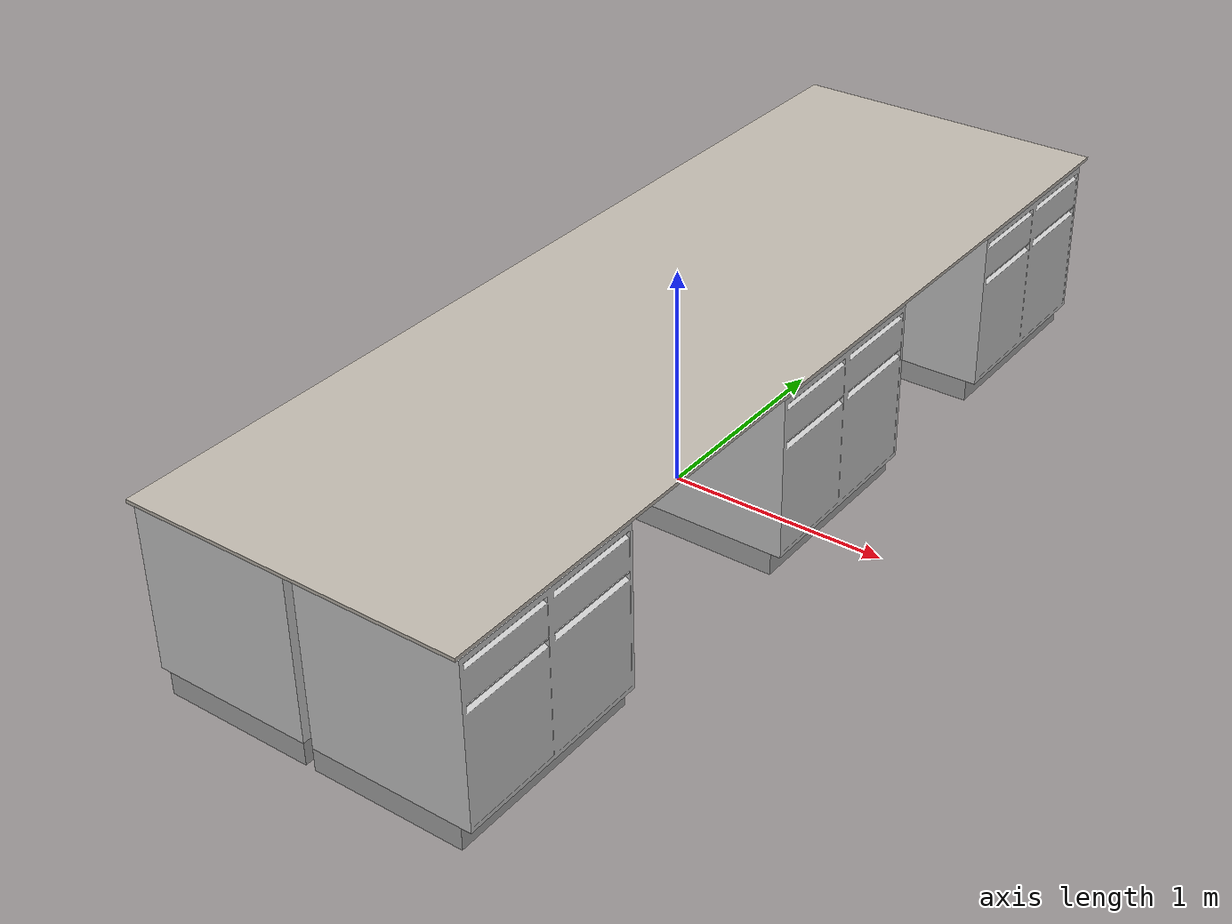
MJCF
<?xml version="1.0" ?>
<mujoco model="lab_table">
  <asset>
    <texture type="2d" name="lab_table_tex" file="surface.png"/>
    <material name="surface_mat" texture="lab_table_tex" specular="0.4" shininess="0.001" rgba="1 1 1 1"/>
    <material name="panel_dark_mat" specular="0.4" shininess="0.001" rgba="0.667 0.667 0.667 1.0"/>
    <material name="leg_light_mat" specular="0.4" shininess="0.001" rgba="0.8 0.8 0.8 1.0"/>

    <mesh file="surface.obj"/>
    <mesh file="panel_dark.obj"/>
    <mesh file="leg_light.obj"/>
  </asset>
  <worldbody>
    <body name="lab_table">
      <inertial pos="0 0 0.4285" mass="5.0" diaginertia="1.0 1.0 0.5"/>
      <geom material="surface_mat" mesh="surface" class="visual"/>
      <geom material="panel_dark_mat" mesh="panel_dark" class="visual"/>
      <geom material="leg_light_mat" mesh="leg_light" class="visual"/>

      <site class="grasppoint" pos="0.0000 0.0000 0.9069"/>
      <site class="grasppoint" pos="0.0000 0.0000 0.9569"/>
      <site class="keypoint" pos="-0.7500 -2.2500 0.8569"/>
      <site class="keypoint" pos="0.7500 2.2500 0.8569"/>
      <site class="keypoint" pos="-0.7500 2.2500 0.8569"/>
      <site class="keypoint" pos="0.7500 -2.2500 0.8569"/>
      <site class="placepoint" pos="0.0000 0.0000 0.8619"/>
      <site name="top_site" pos="0 0 0.8569" size="0.01" rgba="1 0 0 0"/>
      <site name="bottom_site" pos="0 0 0.0" size="0.01" rgba="0 1 0 0"/>
    </body>
  </worldbody>
  <compiler boundmass="0.015" boundinertia="1e-05" angle="radian"/>
  <default>
    <default class="visual">
      <geom group="2" type="mesh" contype="0" conaffinity="0" density="50"/>
    </default>
    <default class="collision">
      <geom group="3" type="mesh" density="50" friction="1.5 0.1 0.1" solimp="0.9 0.95 0.001" solref="0.02 1"/>
    </default>
    <default class="keypoint">
      <site type="sphere" size="0.01" group="3" rgba="1 0 0 1"/>
    </default>
    <default class="placepoint">
      <site type="sphere" size="0.01" group="2" rgba="0 0 1 0"/>
    </default>
    <default class="grasppoint">
      <site type="sphere" size="0.005" group="4" rgba="0 0 1 1"/>
    </default>
  </default>
</mujoco>
